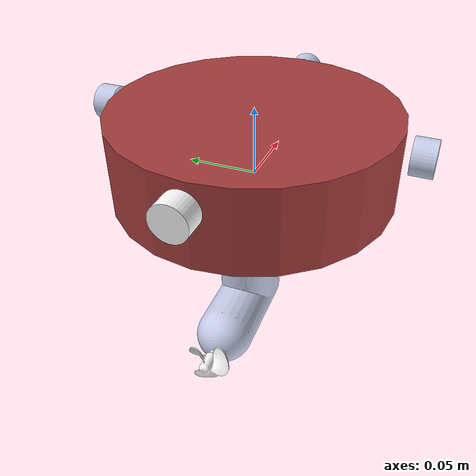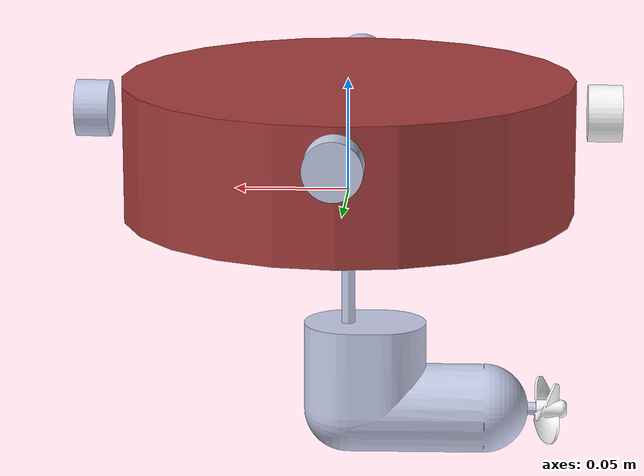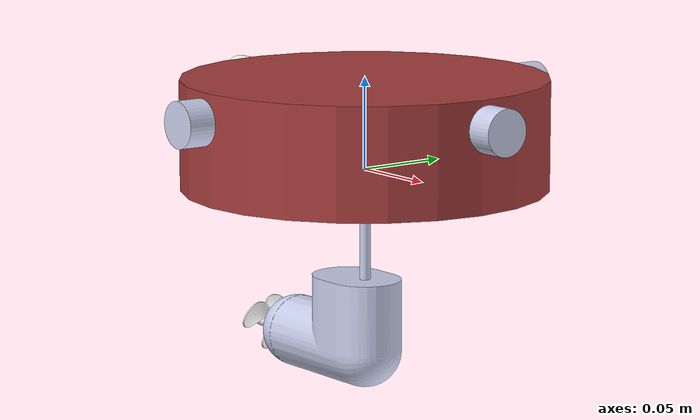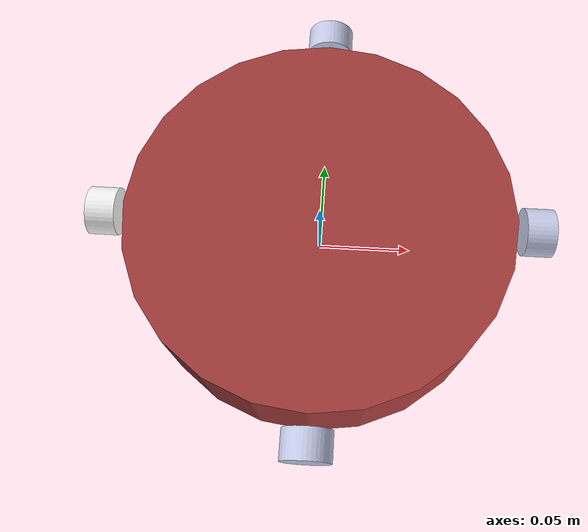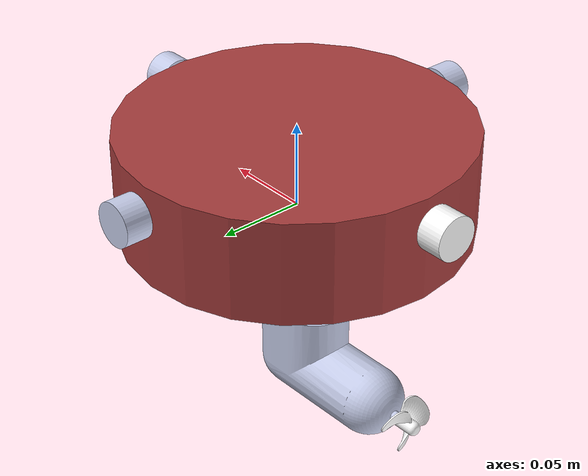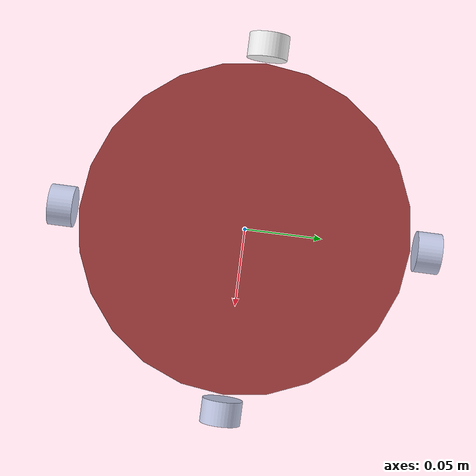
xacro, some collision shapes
<?xml version="1.0"?>
<robot xmlns:xacro="http://www.ros.org/wiki/xacro" name="AzimuthV3">

<xacro:arg name="prefix" default=""/>
<xacro:property name="pkg" value="swarm_robot_description"/>

<!-- Azimuth_bot original version -->
<link name="base_link">
  <inertial>
    <origin xyz="5.6E-06 9.8387E-06 0.059695" rpy="0 0 0"/>
    <mass value="1.6608"/>
    <inertia ixx="0.0092313" ixy="-1.1512E-09" ixz="4.3295E-08" iyy="0.0092314" iyz="-1.1098E-09" izz="0.015172"/>
  </inertial>
  <visual>
    <origin xyz="0 0 0" rpy="0 0 0"/>
    <geometry>
      <mesh filename="package://swarm_robot_description/meshes/base_link.STL"/>
    </geometry>
    <material name="">
      <color rgba="0.6549 0.2392 0.2392 1"/>
    </material>
  </visual>
  <collision>
    <origin xyz="0 0 0.02" rpy="0 0 0"/>
    <geometry>
      <cylinder radius="0.10" length="0.06"/>
    </geometry>
  </collision>
  <collision>
    <origin xyz="0 0 0.055" rpy="0 0 0"/>
    <geometry>
      <box size="0.22 0.16 0.02"/>
    </geometry>
  </collision>
</link>

<link name="Pod_link">
  <inertial>
    <origin xyz="-0.020969 -0.00046657 -0.070974" rpy="0 0 0"/>
    <mass value="0.14581"/>
    <inertia ixx="4.8483E-05" ixy="-6.6571E-07" ixz="-5.2275E-06" iyy="7.8386E-05" iyz="-1.1631E-07" izz="6.0523E-05"/>
  </inertial>
  <visual>
    <origin xyz="0 0 0" rpy="0 0 0"/>
    <geometry>
      <mesh filename="package://swarm_robot_description/meshes/Pod_link.STL"/>
    </geometry>
    <material name="">
      <color rgba="0.79216 0.81961 0.93333 1"/>
    </material>
  </visual>
  <collision>
    <origin xyz="0 0 -0.02" rpy="0 0 0"/>
    <geometry>
      <cylinder radius="0.05" length="0.16"/>
    </geometry>
  </collision>
</link>

<joint name="Pod_Base_joint" type="continuous">
  <origin xyz="0 0 -0.021064" rpy="0 0 0"/>
  <parent link="base_link"/>
  <child link="Pod_link"/>
  <axis xyz="0 0 1"/>
  <dynamics damping="0.2" friction="0.1"/>
</joint>

<link name="Thruster_link">
  <inertial>
    <origin xyz="0.00016255 -7.3738E-06 0.0073041" rpy="0 0 0"/>
    <mass value="0.00098034"/>
    <inertia ixx="4.6405E-08" ixy="-1.131E-12" ixz="4.7907E-10" iyy="4.6394E-08" iyz="-2.1687E-11" izz="6.7921E-08"/>
  </inertial>
  <visual>
    <origin xyz="0 0 0" rpy="0 0 0"/>
    <geometry>
      <mesh filename="package://swarm_robot_description/meshes/Thruster_link.STL"/>
    </geometry>
    <material name="">
      <color rgba="1 1 1 1"/>
    </material>
  </visual>
  <collision>
    <origin xyz="0 0 0" rpy="0 0 0"/>
    <geometry>
      <cylinder radius="0.025" length="0.12"/>
    </geometry>
  </collision>
</link>

<joint name="Thruster_Pod_joint" type="continuous">
  <origin xyz="-0.083823 -0.0018651 -0.08" rpy="1.5698 0 -1.5708"/>
  <parent link="Pod_link"/>
  <child link="Thruster_link"/>
  <axis xyz="0 0 1"/>
  <limit effort="100" velocity="100"/>
  <dynamics damping="0.1" friction="0.1"/>
</joint>

<link name="Sensor1_link">
  <inertial>
    <origin xyz="0 -0.0075 -2.7756E-17" rpy="0 0 0"/>
    <mass value="0.0073631"/>
    <inertia ixx="4.2568E-07" ixy="1.4062E-23" ixz="-1.8994E-23" iyy="5.7524E-07" iyz="-6.5575E-23" izz="4.2568E-07"/>
  </inertial>
  <visual>
    <origin xyz="0 0 0" rpy="0 0 0"/>
    <geometry>
      <mesh filename="package://swarm_robot_description/meshes/Sensor1_link.STL"/>
    </geometry>
    <material name="">
      <color rgba="0.79216 0.81961 0.93333 1"/>
    </material>
  </visual>
  <collision>
    <origin xyz="0 0 0" rpy="0 0 0"/>
    <geometry>
      <mesh filename="package://swarm_robot_description/meshes/Sensor1_link.STL"/>
    </geometry>
  </collision>
</link>

<joint name="Sensor1_Base_joint" type="fixed">
  <origin xyz="0 0.12 0.035776" rpy="0 0 0"/>
  <parent link="base_link"/>
  <child link="Sensor1_link"/>
  <axis xyz="0 0 0"/>
</joint>

<link name="Sensor2_link">
  <inertial>
    <origin xyz="-1.7347E-18 0.0075 2.7756E-17" rpy="0 0 0"/>
    <mass value="0.0073631"/>
    <inertia ixx="4.2568E-07" ixy="-1.4889E-23" ixz="-3.2744E-25" iyy="5.7524E-07" iyz="-5.0502E-23" izz="4.2568E-07"/>
  </inertial>
  <visual>
    <origin xyz="0 0 0" rpy="0 0 0"/>
    <geometry>
      <mesh filename="package://swarm_robot_description/meshes/Sensor2_link.STL"/>
    </geometry>
    <material name="">
      <color rgba="0.79216 0.81961 0.93333 1"/>
    </material>
  </visual>
  <collision>
    <origin xyz="0 0 0" rpy="0 0 0"/>
    <geometry>
      <mesh filename="package://swarm_robot_description/meshes/Sensor2_link.STL"/>
    </geometry>
  </collision>
</link>

<joint name="Sensor2_Base_joint" type="fixed">
  <origin xyz="0 -0.12 0.035776" rpy="0 0 0"/>
  <parent link="base_link"/>
  <child link="Sensor2_link"/>
  <axis xyz="0 0 0"/>
</joint>

<link name="Sensor3_link">
  <inertial>
    <origin xyz="-0.0075 1.7347E-18 0" rpy="0 0 0"/>
    <mass value="0.0073631"/>
    <inertia ixx="5.7524E-07" ixy="-9.9262E-24" ixz="-6.0641E-23" iyy="4.2568E-07" iyz="-5.0285E-23" izz="4.2568E-07"/>
  </inertial>
  <visual>
    <origin xyz="0 0 0" rpy="0 0 0"/>
    <geometry>
      <mesh filename="package://swarm_robot_description/meshes/Sensor3_link.STL"/>
    </geometry>
    <material name="">
      <color rgba="0.79216 0.81961 0.93333 1"/>
    </material>
  </visual>
  <collision>
    <origin xyz="0 0 0" rpy="0 0 0"/>
    <geometry>
      <mesh filename="package://swarm_robot_description/meshes/Sensor3_link.STL"/>
    </geometry>
  </collision>
</link>

<joint name="Sensor3_Base_joint" type="fixed">
  <origin xyz="0.12 0 0.035776" rpy="0 0 0"/>
  <parent link="base_link"/>
  <child link="Sensor3_link"/>
  <axis xyz="0 0 0"/>
</joint>

<link name="Sensor4_link">
  <inertial>
    <origin xyz="0 0 0" rpy="0 0 0"/>
    <mass value="0.0073631"/>
    <inertia ixx="5.7524E-07" ixy="0" ixz="0" iyy="4.2568E-07" iyz="0" izz="4.2568E-07"/>
  </inertial>
  <visual>
    <origin xyz="0 0 0" rpy="0 0 0"/>
    <geometry>
      <mesh filename="package://swarm_robot_description/meshes/Sensor4_link.STL"/>
    </geometry>
    <material name="">
      <color rgba="1 1 1 1"/>
    </material>
  </visual>
  <collision>
    <origin xyz="0 0 0" rpy="0 0 0"/>
    <geometry>
      <mesh filename="package://swarm_robot_description/meshes/Sensor4_link.STL"/>
    </geometry>
  </collision>
</link>

<joint name="Sensor4_Base_joint" type="fixed">
  <origin xyz="-0.12 0 0.035776" rpy="0 0 0"/>
  <parent link="base_link"/>
  <child link="Sensor4_link"/>
  <axis xyz="0 0 0"/>
</joint>

</robot>
